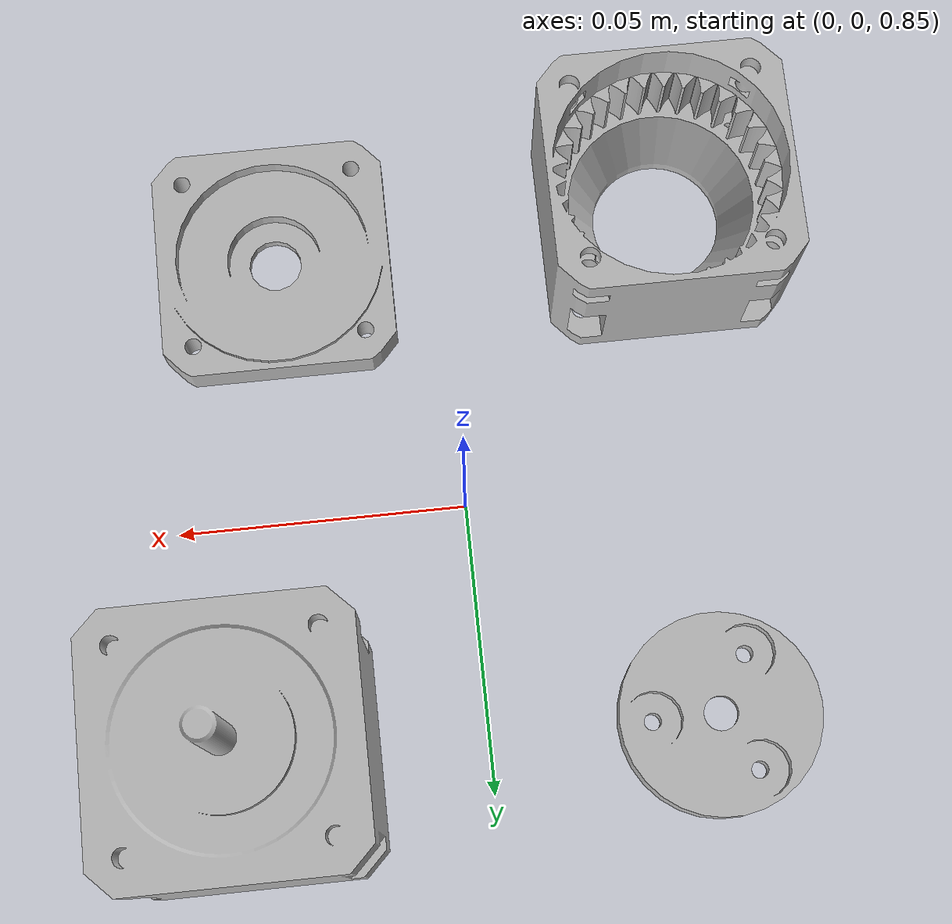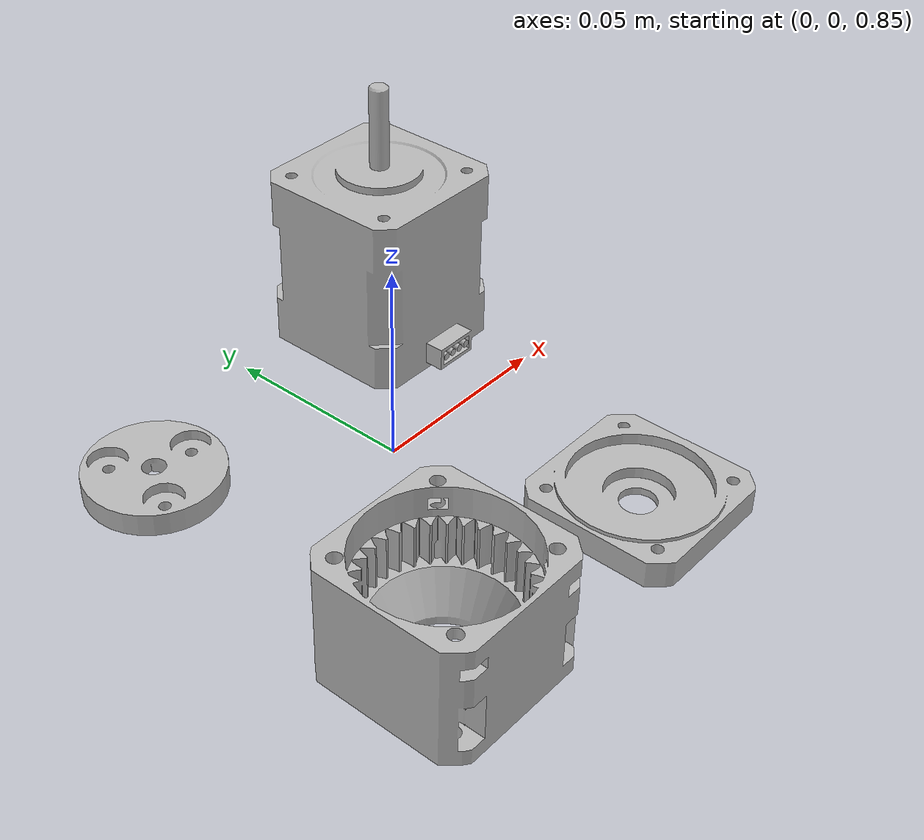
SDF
<sdf version="1.6">
 <world name="default">
  <light name="sun" type="directional">
   <pose>0 0 10 0 -0 0</pose>
   <diffuse>0.8 0.8 0.8 1</diffuse>
   <specular>0.1 0.1 0.1 1</specular>
   <attenuation>
    <range>1000</range>
    <constant>0.9</constant>
    <linear>0.01</linear>
    <quadratic>0.001</quadratic>
   </attenuation>
   <direction>-0.5 0.5 -1</direction>
  </light>
  <model name="ground_plane">
   <static>1</static>
   <link name="link">
    <collision name="collision">
     <geometry><plane><normal>0 0 1</normal><size>100 100</size></plane></geometry>
     <surface><friction><ode><mu>100</mu><mu2>50</mu2></ode></friction></surface>
    </collision>
    <visual name="visual">
     <cast_shadows>0</cast_shadows>
     <geometry><plane><normal>0 0 1</normal><size>100 100</size></plane></geometry>
     <material>
      <script><uri>file://media/materials/scripts/gazebo.material</uri><name>Gazebo/Grey</name></script>
     </material>
    </visual>
   </link>
  </model>
  <gravity>0 0 -9.8</gravity>
  <magnetic_field>6e-06 2.3e-05 -4.2e-05</magnetic_field>
  <atmosphere type="adiabatic"/>
  <physics name="default_physics" default="0" type="ode">
   <max_step_size>0.001</max_step_size>
   <real_time_factor>1</real_time_factor>
   <real_time_update_rate>1000</real_time_update_rate>
  </physics>
  <scene><ambient>0.4 0.4 0.4 1</ambient><background>0.7 0.7 0.7 1</background><shadows>1</shadows></scene>
  <spherical_coordinates>
   <surface_model>EARTH_WGS84</surface_model>
   <latitude_deg>0</latitude_deg>
   <longitude_deg>0</longitude_deg>
   <elevation>0</elevation>
   <heading_deg>0</heading_deg>
  </spherical_coordinates>
  <light name="user_point_light_0" type="point">
   <pose>0 0 2 0 -0 0</pose>
   <diffuse>0.2 0.2 0.2 1</diffuse>
   <specular>0.1 0.1 0.1 1</specular>
   <attenuation>
    <range>20</range>
    <constant>0.5</constant>
    <linear>0.01</linear>
    <quadratic>0.001</quadratic>
   </attenuation>
   <cast_shadows>0</cast_shadows>
   <direction>0 0 -1</direction>
  </light>
  <include>
   <uri>model://Nema/carrier</uri>
   <name>carrier</name>
   <pose>-0.04 0.04 0.845 0 0 0</pose>
   <static>1</static>
  </include>
  <include>
   <uri>model://Nema/cover</uri>
   <name>cover</name>
   <pose>0.03 -0.05 0.845 0 0 0</pose>
   <static>1</static>
  </include>
  <include>
   <uri>model://Nema/housing</uri>
   <name>housing</name>
   <pose>-0.04 -0.05 0.845 0 0 0</pose>
   <static>1</static>
  </include>
  <include>
   <uri>model://Nema/sun_gear</uri>
   <name>sun_gear</name>
   <pose>0 0.04 0.845 0 0 0</pose>
   <static>1</static>
  </include>
  <include>
   <uri>model://Nema/Nema17</uri>
   <name>Nema17</name>
   <pose>0.04 0.04 0.845 0 0 0</pose>
   <static>1</static>
  </include>
 </world>
</sdf>

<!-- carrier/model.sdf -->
<sdf version="1.5">
  <model name="carrier">
    <static>false</static>
    <link name="link">
      <collision name="collision">
        <geometry>
          <mesh>
            <scale>1 1 1</scale>
            <uri>model://Nema/carrier/carrier.dae</uri>
          </mesh>
        </geometry>
      </collision>
      <visual name="visual">
        <geometry>
          <mesh>
            <scale>1 1 1</scale>
            <uri>model://Nema/carrier/carrier.dae</uri>
          </mesh>
        </geometry>
      </visual>
    </link>
  </model>
</sdf>

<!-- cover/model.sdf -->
<sdf version="1.5">
  <model name="cover">
    <static>false</static>
    <link name="link">
      <collision name="collision">
        <geometry>
          <mesh>
            <scale>1 1 1</scale>
            <uri>model://Nema/cover/cover.dae</uri>
          </mesh>
        </geometry>
      </collision>
      <visual name="visual">
        <geometry>
          <mesh>
            <scale>1 1 1</scale>
            <uri>model://Nema/cover/cover.dae</uri>
          </mesh>
        </geometry>
      </visual>
    </link>
  </model>
</sdf>

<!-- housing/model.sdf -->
<sdf version="1.5">
  <model name="housing">
    <static>false</static>
    <link name="link">
      <collision name="collision">
        <geometry>
          <mesh>
            <scale>1 1 1</scale>
            <uri>model://Nema/housing/housing.dae</uri>
          </mesh>
        </geometry>
      </collision>
      <visual name="visual">
        <geometry>
          <mesh>
            <scale>1 1 1</scale>
            <uri>model://Nema/housing/housing.dae</uri>
          </mesh>
        </geometry>
      </visual>
    </link>
  </model>
</sdf>

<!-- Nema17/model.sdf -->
<sdf version="1.5">
  <model name="Nema17">
    <static>false</static>
    <link name="link">
      <collision name="collision">
        <geometry>
          <mesh>
            <scale>1 1 1</scale>
            <uri>model://Nema/Nema17/Nema17.dae</uri>
          </mesh>
        </geometry>
      </collision>
      <visual name="visual">
        <geometry>
          <mesh>
            <scale>1 1 1</scale>
            <uri>model://Nema/Nema17/Nema17.dae</uri>
          </mesh>
        </geometry>
      </visual>
    </link>
  </model>
</sdf>
